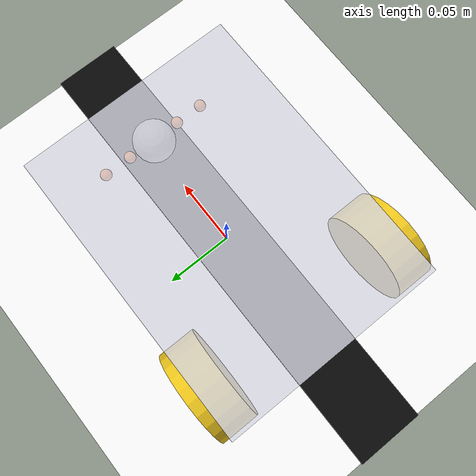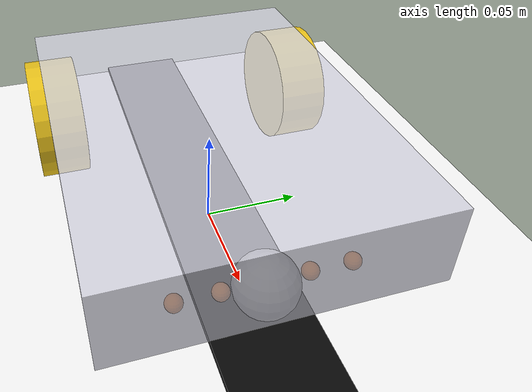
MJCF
<mujoco model="diff_drive">

  <compiler angle="radian" autolimits="true"/>

  <!-- timestep 0.004 s = 250 Hz physics; 5 substeps per 50 Hz control tick -->
  <option timestep="0.004" gravity="0 0 -9.81" integrator="implicitfast">
  </option>

  <default>
    <joint damping="0.01" armature="0.001"/>
    <!-- Softer contacts prevent bounce/instability on the kit's light chassis -->
    <geom condim="3" friction="0.8 0.005 0.005"
          solimp="0.95 0.99 0.001 0.5 2"
          solref="0.04 1"/>
    <motor ctrllimited="true" ctrlrange="-18 18"/>
  </default>

  <worldbody>
    <!-- Ground plane: white, used for IR sensing -->
    <geom name="floor" type="plane" size="4 4 0.1" pos="0 0 0"
          rgba="0.96 0.96 0.96 1" condim="3" friction="0.8 0.005 0.005"
          solimp="0.95 0.99 0.001 0.5 2" solref="0.04 1"/>

    <!-- Line strip box (black): replaced each episode programmatically.
         Half-extents: [3.0, line_half_width, 0.0015]. Initially invisible. -->
    <geom name="line_strip" type="box" size="3.0 0.025 0.0015"
          pos="0 0 0.0015" rgba="0.03 0.03 0.03 1"
          contype="0" conaffinity="0"/>
    <!-- Segmented visual track geoms for sampled curves/arcs/turn sequences. -->
    <geom name="line_seg_000" type="box" size="0.001 0.001 0.001" pos="0 0 -5" rgba="0.03 0.03 0.03 0" contype="0" conaffinity="0"/>
    <geom name="line_seg_001" type="box" size="0.001 0.001 0.001" pos="0 0 -5" rgba="0.03 0.03 0.03 0" contype="0" conaffinity="0"/>
    <geom name="line_seg_002" type="box" size="0.001 0.001 0.001" pos="0 0 -5" rgba="0.03 0.03 0.03 0" contype="0" conaffinity="0"/>
    <geom name="line_seg_003" type="box" size="0.001 0.001 0.001" pos="0 0 -5" rgba="0.03 0.03 0.03 0" contype="0" conaffinity="0"/>
    <geom name="line_seg_004" type="box" size="0.001 0.001 0.001" pos="0 0 -5" rgba="0.03 0.03 0.03 0" contype="0" conaffinity="0"/>
    <geom name="line_seg_005" type="box" size="0.001 0.001 0.001" pos="0 0 -5" rgba="0.03 0.03 0.03 0" contype="0" conaffinity="0"/>
    <geom name="line_seg_006" type="box" size="0.001 0.001 0.001" pos="0 0 -5" rgba="0.03 0.03 0.03 0" contype="0" conaffinity="0"/>
    <geom name="line_seg_007" type="box" size="0.001 0.001 0.001" pos="0 0 -5" rgba="0.03 0.03 0.03 0" contype="0" conaffinity="0"/>
    <geom name="line_seg_008" type="box" size="0.001 0.001 0.001" pos="0 0 -5" rgba="0.03 0.03 0.03 0" contype="0" conaffinity="0"/>
    <geom name="line_seg_009" type="box" size="0.001 0.001 0.001" pos="0 0 -5" rgba="0.03 0.03 0.03 0" contype="0" conaffinity="0"/>
    <geom name="line_seg_010" type="box" size="0.001 0.001 0.001" pos="0 0 -5" rgba="0.03 0.03 0.03 0" contype="0" conaffinity="0"/>
    <geom name="line_seg_011" type="box" size="0.001 0.001 0.001" pos="0 0 -5" rgba="0.03 0.03 0.03 0" contype="0" conaffinity="0"/>
    <geom name="line_seg_012" type="box" size="0.001 0.001 0.001" pos="0 0 -5" rgba="0.03 0.03 0.03 0" contype="0" conaffinity="0"/>
    <geom name="line_seg_013" type="box" size="0.001 0.001 0.001" pos="0 0 -5" rgba="0.03 0.03 0.03 0" contype="0" conaffinity="0"/>
    <geom name="line_seg_014" type="box" size="0.001 0.001 0.001" pos="0 0 -5" rgba="0.03 0.03 0.03 0" contype="0" conaffinity="0"/>
    <geom name="line_seg_015" type="box" size="0.001 0.001 0.001" pos="0 0 -5" rgba="0.03 0.03 0.03 0" contype="0" conaffinity="0"/>
    <geom name="line_seg_016" type="box" size="0.001 0.001 0.001" pos="0 0 -5" rgba="0.03 0.03 0.03 0" contype="0" conaffinity="0"/>
    <geom name="line_seg_017" type="box" size="0.001 0.001 0.001" pos="0 0 -5" rgba="0.03 0.03 0.03 0" contype="0" conaffinity="0"/>
    <geom name="line_seg_018" type="box" size="0.001 0.001 0.001" pos="0 0 -5" rgba="0.03 0.03 0.03 0" contype="0" conaffinity="0"/>
    <geom name="line_seg_019" type="box" size="0.001 0.001 0.001" pos="0 0 -5" rgba="0.03 0.03 0.03 0" contype="0" conaffinity="0"/>
    <geom name="line_seg_020" type="box" size="0.001 0.001 0.001" pos="0 0 -5" rgba="0.03 0.03 0.03 0" contype="0" conaffinity="0"/>
    <geom name="line_seg_021" type="box" size="0.001 0.001 0.001" pos="0 0 -5" rgba="0.03 0.03 0.03 0" contype="0" conaffinity="0"/>
    <geom name="line_seg_022" type="box" size="0.001 0.001 0.001" pos="0 0 -5" rgba="0.03 0.03 0.03 0" contype="0" conaffinity="0"/>
    <geom name="line_seg_023" type="box" size="0.001 0.001 0.001" pos="0 0 -5" rgba="0.03 0.03 0.03 0" contype="0" conaffinity="0"/>
    <geom name="line_seg_024" type="box" size="0.001 0.001 0.001" pos="0 0 -5" rgba="0.03 0.03 0.03 0" contype="0" conaffinity="0"/>
    <geom name="line_seg_025" type="box" size="0.001 0.001 0.001" pos="0 0 -5" rgba="0.03 0.03 0.03 0" contype="0" conaffinity="0"/>
    <geom name="line_seg_026" type="box" size="0.001 0.001 0.001" pos="0 0 -5" rgba="0.03 0.03 0.03 0" contype="0" conaffinity="0"/>
    <geom name="line_seg_027" type="box" size="0.001 0.001 0.001" pos="0 0 -5" rgba="0.03 0.03 0.03 0" contype="0" conaffinity="0"/>
    <geom name="line_seg_028" type="box" size="0.001 0.001 0.001" pos="0 0 -5" rgba="0.03 0.03 0.03 0" contype="0" conaffinity="0"/>
    <geom name="line_seg_029" type="box" size="0.001 0.001 0.001" pos="0 0 -5" rgba="0.03 0.03 0.03 0" contype="0" conaffinity="0"/>
    <geom name="line_seg_030" type="box" size="0.001 0.001 0.001" pos="0 0 -5" rgba="0.03 0.03 0.03 0" contype="0" conaffinity="0"/>
    <geom name="line_seg_031" type="box" size="0.001 0.001 0.001" pos="0 0 -5" rgba="0.03 0.03 0.03 0" contype="0" conaffinity="0"/>
    <geom name="line_seg_032" type="box" size="0.001 0.001 0.001" pos="0 0 -5" rgba="0.03 0.03 0.03 0" contype="0" conaffinity="0"/>
    <geom name="line_seg_033" type="box" size="0.001 0.001 0.001" pos="0 0 -5" rgba="0.03 0.03 0.03 0" contype="0" conaffinity="0"/>
    <geom name="line_seg_034" type="box" size="0.001 0.001 0.001" pos="0 0 -5" rgba="0.03 0.03 0.03 0" contype="0" conaffinity="0"/>
    <geom name="line_seg_035" type="box" size="0.001 0.001 0.001" pos="0 0 -5" rgba="0.03 0.03 0.03 0" contype="0" conaffinity="0"/>
    <geom name="line_seg_036" type="box" size="0.001 0.001 0.001" pos="0 0 -5" rgba="0.03 0.03 0.03 0" contype="0" conaffinity="0"/>
    <geom name="line_seg_037" type="box" size="0.001 0.001 0.001" pos="0 0 -5" rgba="0.03 0.03 0.03 0" contype="0" conaffinity="0"/>
    <geom name="line_seg_038" type="box" size="0.001 0.001 0.001" pos="0 0 -5" rgba="0.03 0.03 0.03 0" contype="0" conaffinity="0"/>
    <geom name="line_seg_039" type="box" size="0.001 0.001 0.001" pos="0 0 -5" rgba="0.03 0.03 0.03 0" contype="0" conaffinity="0"/>
    <geom name="line_seg_040" type="box" size="0.001 0.001 0.001" pos="0 0 -5" rgba="0.03 0.03 0.03 0" contype="0" conaffinity="0"/>
    <geom name="line_seg_041" type="box" size="0.001 0.001 0.001" pos="0 0 -5" rgba="0.03 0.03 0.03 0" contype="0" conaffinity="0"/>
    <geom name="line_seg_042" type="box" size="0.001 0.001 0.001" pos="0 0 -5" rgba="0.03 0.03 0.03 0" contype="0" conaffinity="0"/>
    <geom name="line_seg_043" type="box" size="0.001 0.001 0.001" pos="0 0 -5" rgba="0.03 0.03 0.03 0" contype="0" conaffinity="0"/>
    <geom name="line_seg_044" type="box" size="0.001 0.001 0.001" pos="0 0 -5" rgba="0.03 0.03 0.03 0" contype="0" conaffinity="0"/>
    <geom name="line_seg_045" type="box" size="0.001 0.001 0.001" pos="0 0 -5" rgba="0.03 0.03 0.03 0" contype="0" conaffinity="0"/>
    <geom name="line_seg_046" type="box" size="0.001 0.001 0.001" pos="0 0 -5" rgba="0.03 0.03 0.03 0" contype="0" conaffinity="0"/>
    <geom name="line_seg_047" type="box" size="0.001 0.001 0.001" pos="0 0 -5" rgba="0.03 0.03 0.03 0" contype="0" conaffinity="0"/>
    <geom name="line_seg_048" type="box" size="0.001 0.001 0.001" pos="0 0 -5" rgba="0.03 0.03 0.03 0" contype="0" conaffinity="0"/>
    <geom name="line_seg_049" type="box" size="0.001 0.001 0.001" pos="0 0 -5" rgba="0.03 0.03 0.03 0" contype="0" conaffinity="0"/>
    <geom name="line_seg_050" type="box" size="0.001 0.001 0.001" pos="0 0 -5" rgba="0.03 0.03 0.03 0" contype="0" conaffinity="0"/>
    <geom name="line_seg_051" type="box" size="0.001 0.001 0.001" pos="0 0 -5" rgba="0.03 0.03 0.03 0" contype="0" conaffinity="0"/>
    <geom name="line_seg_052" type="box" size="0.001 0.001 0.001" pos="0 0 -5" rgba="0.03 0.03 0.03 0" contype="0" conaffinity="0"/>
    <geom name="line_seg_053" type="box" size="0.001 0.001 0.001" pos="0 0 -5" rgba="0.03 0.03 0.03 0" contype="0" conaffinity="0"/>
    <geom name="line_seg_054" type="box" size="0.001 0.001 0.001" pos="0 0 -5" rgba="0.03 0.03 0.03 0" contype="0" conaffinity="0"/>
    <geom name="line_seg_055" type="box" size="0.001 0.001 0.001" pos="0 0 -5" rgba="0.03 0.03 0.03 0" contype="0" conaffinity="0"/>
    <geom name="line_seg_056" type="box" size="0.001 0.001 0.001" pos="0 0 -5" rgba="0.03 0.03 0.03 0" contype="0" conaffinity="0"/>
    <geom name="line_seg_057" type="box" size="0.001 0.001 0.001" pos="0 0 -5" rgba="0.03 0.03 0.03 0" contype="0" conaffinity="0"/>
    <geom name="line_seg_058" type="box" size="0.001 0.001 0.001" pos="0 0 -5" rgba="0.03 0.03 0.03 0" contype="0" conaffinity="0"/>
    <geom name="line_seg_059" type="box" size="0.001 0.001 0.001" pos="0 0 -5" rgba="0.03 0.03 0.03 0" contype="0" conaffinity="0"/>
    <geom name="line_seg_060" type="box" size="0.001 0.001 0.001" pos="0 0 -5" rgba="0.03 0.03 0.03 0" contype="0" conaffinity="0"/>
    <geom name="line_seg_061" type="box" size="0.001 0.001 0.001" pos="0 0 -5" rgba="0.03 0.03 0.03 0" contype="0" conaffinity="0"/>
    <geom name="line_seg_062" type="box" size="0.001 0.001 0.001" pos="0 0 -5" rgba="0.03 0.03 0.03 0" contype="0" conaffinity="0"/>
    <geom name="line_seg_063" type="box" size="0.001 0.001 0.001" pos="0 0 -5" rgba="0.03 0.03 0.03 0" contype="0" conaffinity="0"/>

    <!-- Robot body — Hack Lab kit chassis dimensions -->
    <!-- Chassis ≈ 20x15x4 cm; wheels at rear, ball caster at front -->
    <!-- Spawn height: wheel radius (0.033) + small clearance = 0.038 m -->
    <body name="base_link" pos="0 0 0.05">
      <freejoint name="root"/>
      <!-- mass 0.35 kg: chassis + Pi + L298N + battery bank + 9V -->
      <inertial pos="0 0 0" mass="0.35"
                fullinertia="0.0025 0.0030 0.0045 0 0 0"/>
      <geom name="chassis" type="box" size="0.10 0.075 0.02"
            rgba="0.85 0.85 0.9 0.8" mass="0"/>

      <site name="ir0" pos="0.08 -0.04 -0.018" size="0.004" rgba="1 0.4 0 1"/>
      <site name="ir1" pos="0.08 -0.02 -0.018" size="0.004" rgba="1 0.4 0 1"/>
      <site name="ir2" pos="0.08  0.00 -0.018" size="0.004" rgba="1 0.4 0 1"/>
      <site name="ir3" pos="0.08  0.02 -0.018" size="0.004" rgba="1 0.4 0 1"/>
      <site name="ir4" pos="0.08  0.04 -0.018" size="0.004" rgba="1 0.4 0 1"/>

      <!-- Left rear wheel: TT motor wheel radius=0.033m, width=0.026m -->
      <!-- Wheel axle offset: -0.07 m rear, ±0.07 m lateral -->
      <body name="left_rear_wheel" pos="-0.07 0.07 -0.017">
        <joint name="left_wheel_joint" type="hinge" axis="0 1 0" damping="0.03" armature="0.001"/>
        <inertial pos="0 0 0" mass="0.05"
                  fullinertia="0.000027 0.000054 0.000027 0 0 0"/>
        <geom name="left_wheel" type="cylinder" size="0.033 0.013"
              euler="1.5707963 0 0" rgba="0.9 0.75 0.1 1" mass="0"
              friction="1.2 0.01 0.01"/>
      </body>

      <!-- Right rear wheel -->
      <body name="right_rear_wheel" pos="-0.07 -0.07 -0.017">
        <joint name="right_wheel_joint" type="hinge" axis="0 1 0" damping="0.03" armature="0.001"/>
        <inertial pos="0 0 0" mass="0.05"
                  fullinertia="0.000027 0.000054 0.000027 0 0 0"/>
        <geom name="right_wheel" type="cylinder" size="0.033 0.013"
              euler="1.5707963 0 0" rgba="0.9 0.75 0.1 1" mass="0"
              friction="1.2 0.01 0.01"/>
      </body>

      <!-- Front ball caster — metal ball, radius ~15 mm -->
      <body name="front_caster" pos="0.08 0 -0.02">
        <joint name="caster_joint" type="ball" damping="0.002" armature="0"/>
        <inertial pos="0 0 0" mass="0.02"
                  fullinertia="0.000003 0.000003 0.000003 0 0 0"/>
        <geom name="caster_geom" type="sphere" size="0.015"
              rgba="0.6 0.6 0.6 1" mass="0"
              friction="0.01 0.001 0.001"/>
      </body>
    </body>
  </worldbody>

  <actuator>
    <!-- Velocity actuators.  TT motors at 9V ≈ 200 RPM ≈ 21 rad/s at wheel. -->
    <!-- ctrlrange ±18 rad/s is a conservative usable range. -->
    <velocity name="left_wheel_vel"  joint="left_wheel_joint"
              kv="6" ctrlrange="-18 18"/>
    <velocity name="right_wheel_vel" joint="right_wheel_joint"
              kv="6" ctrlrange="-18 18"/>
  </actuator>

  <sensor>
    <!-- Joint velocity sensors for wheel odometry (encoder analogue) -->
    <jointvel name="left_wheel_vel_sensor"  joint="left_wheel_joint"/>
    <jointvel name="right_wheel_vel_sensor" joint="right_wheel_joint"/>
    <!-- Body velocity in world frame (for forward-speed reward) -->
    <framelinvel name="base_linvel" objtype="body" objname="base_link"/>
    <framequat    name="base_quat"  objtype="body" objname="base_link"/>
  </sensor>
</mujoco>
